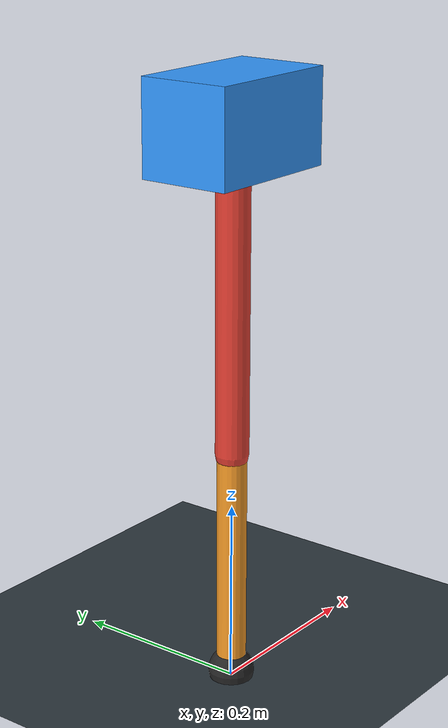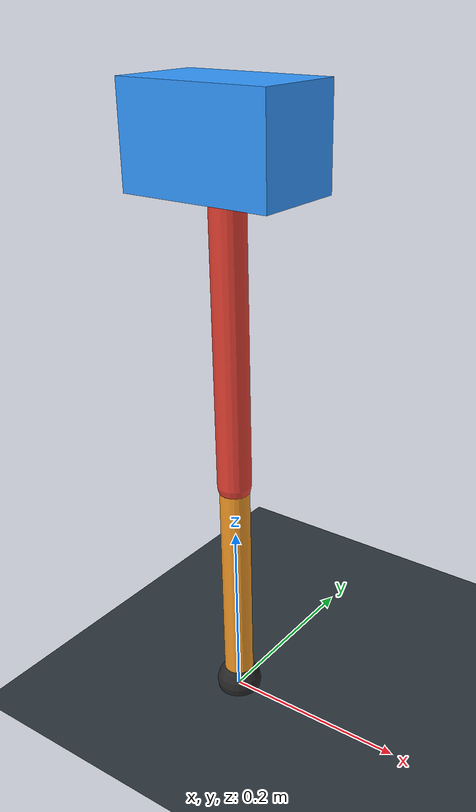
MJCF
<mujoco model="single_axis_two_bar">
  <compiler angle="radian" inertiafromgeom="true"/>
  <option timestep="0.001" integrator="implicitfast" gravity="0 0 -9.81"/>
  <default>
    <joint damping="0.08"/>
    <geom friction="1.2 0.01 0.0001" condim="3"/>
  </default>
  <worldbody>
    <geom name="floor" type="plane" size="5 5 0.1" rgba="0.18 0.22 0.25 1"/>
    <body name="carriage" pos="0 0 0.6096604631657143">
      <joint name="pole_slide" type="slide" axis="0 0 1"/>
      <geom name="payload" type="box" size="0.08 0.05 0.05" mass="3.1225227535739535" rgba="0.2 0.6 1 1"/>
      <body name="thigh" pos="0 0 0">
        <joint name="hip" type="hinge" axis="0 1 0"/>
        <geom name="thigh_link" type="capsule" fromto="0 0 0 0 0 -0.34961837556592346" size="0.018" mass="0.24910771238995624" rgba="0.9 0.25 0.2 1"/>
        <body name="shank" pos="0 0 -0.34961837556592346">
          <joint name="knee" type="hinge" axis="0 1 0"/>
          <geom name="shank_link" type="capsule" fromto="0 0 0 0 0 -0.2531243699657409" size="0.016" mass="0.18035445834403824" rgba="0.95 0.6 0.15 1"/>
          <geom name="foot" type="sphere" pos="0 0 -0.2531243699657409" size="0.025" mass="0.03" rgba="0.15 0.15 0.15 1"/>
          <site name="toe" pos="0 0 -0.2531243699657409" size="0.008"/>
        </body>
      </body>
    </body>
  </worldbody>
  <actuator>
    <motor name="hip_motor" joint="hip" ctrlrange="-36.97199679137962 36.97199679137962"/>
    <motor name="knee_motor" joint="knee" ctrlrange="-142.44105625919246 142.44105625919246"/>
  </actuator>
</mujoco>
